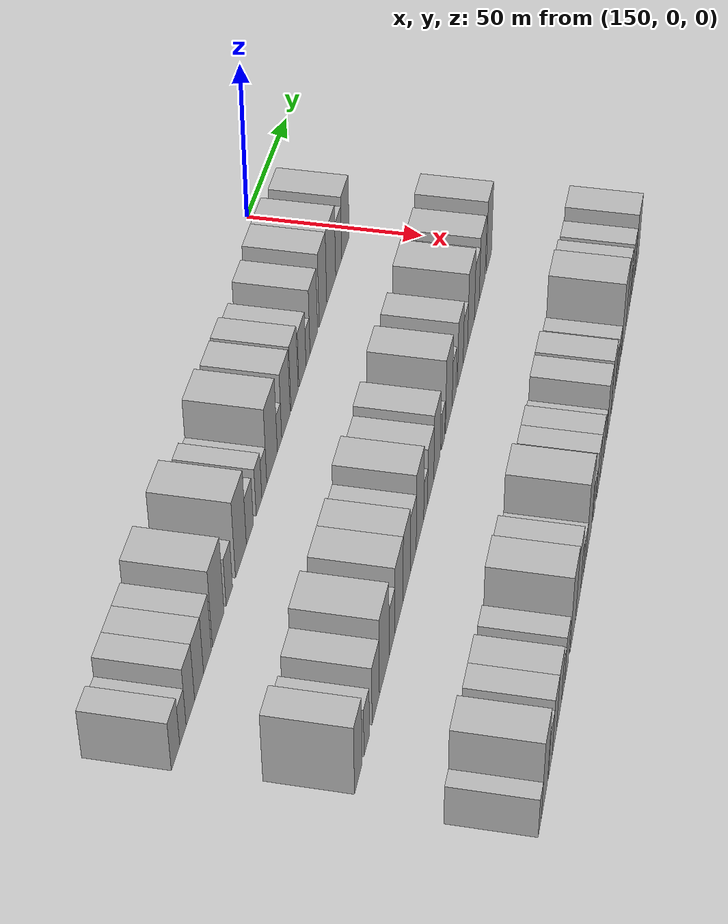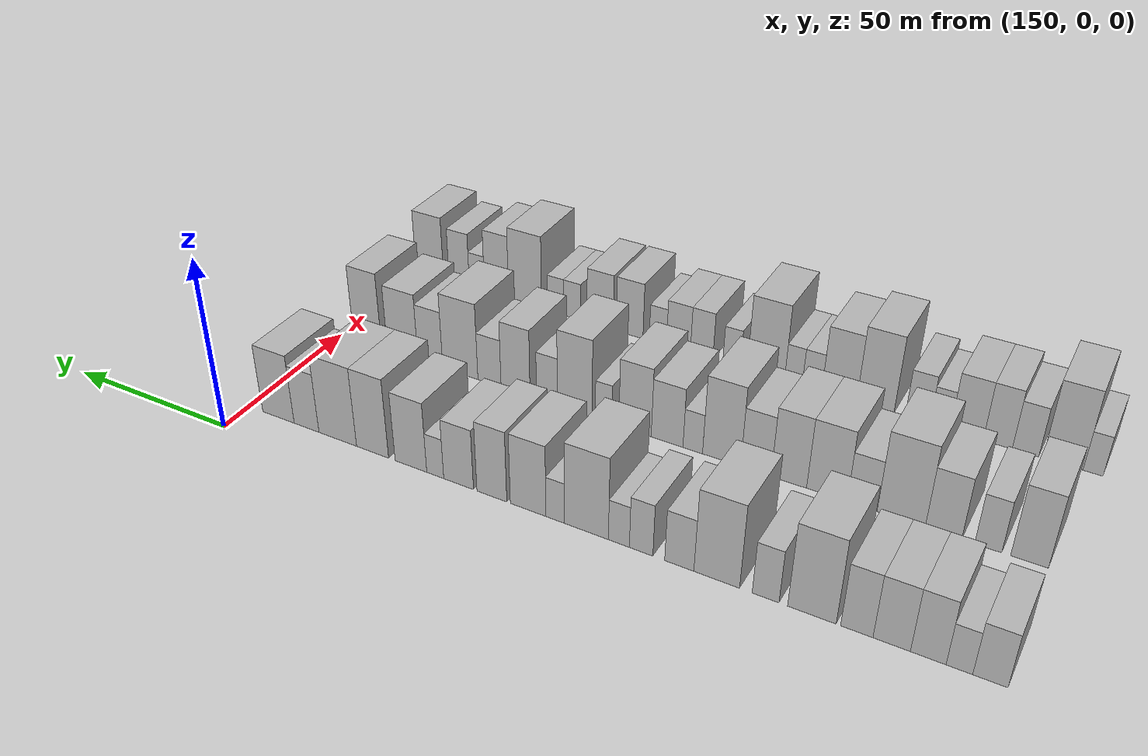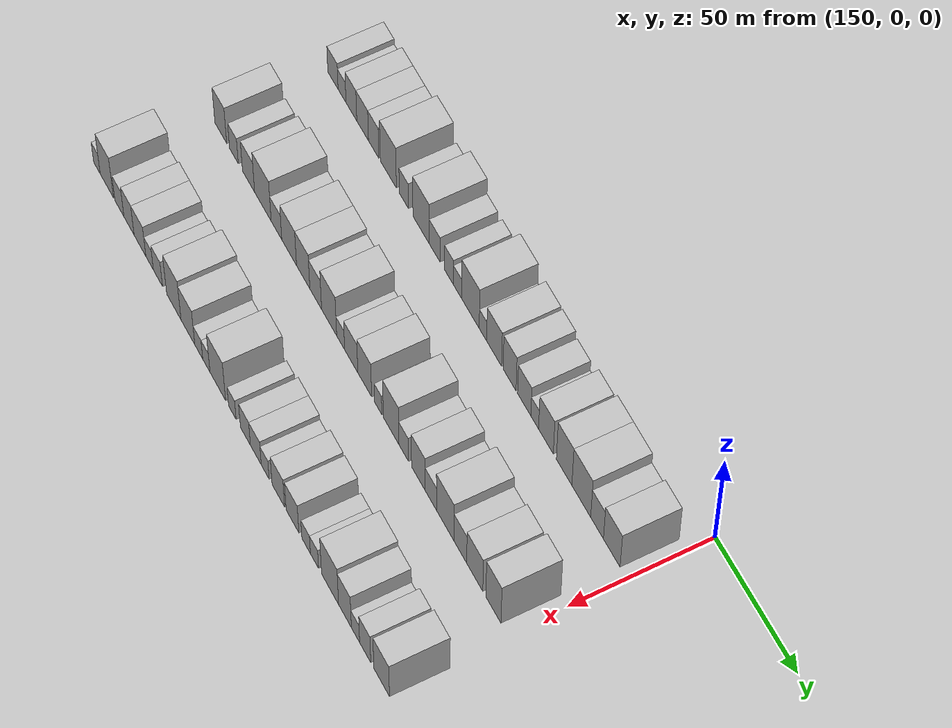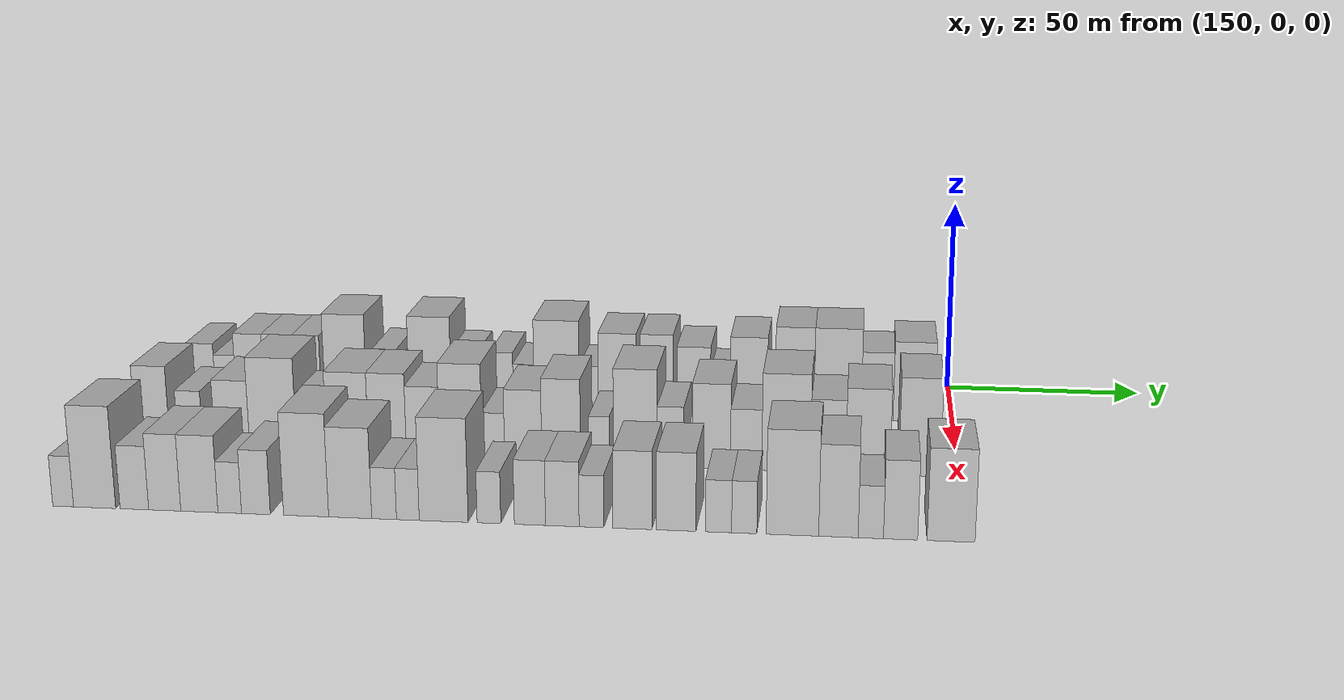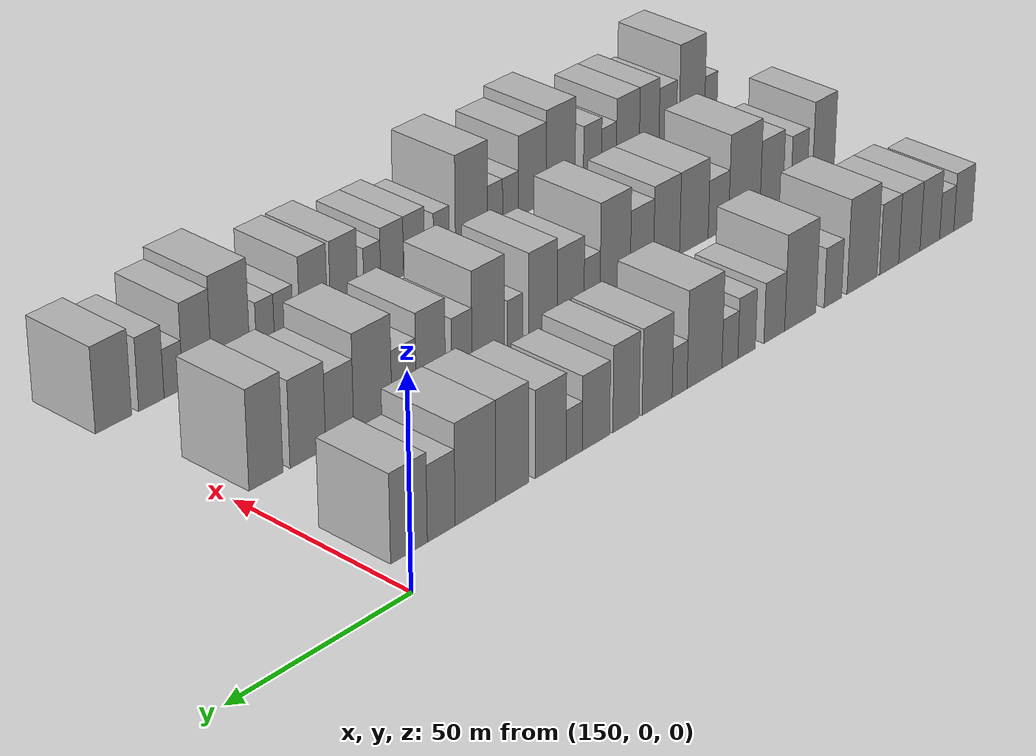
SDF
<sdf version="1.6">
 <world name="default">
  <model name="building_463">
   <static>1</static>
   <pose>170.0000 -195.9875 0 0.000000 0.000000 0.000000</pose>
   <link name="link">
    <pose>0 0 7.50 0 0 0</pose>
    <collision name="collision"><geometry><box><size>20.0000 7.2621 15.0000</size></box></geometry></collision>
    <visual name="visual">
     <cast_shadows>0</cast_shadows>
     <geometry><box><size>20.0000 7.2621 15.0000</size></box></geometry>
     <material>
      <script>
       <uri>model://HANNAS_wall/materials/scripts</uri>
       <uri>model://HANNAS_wall/materials/textures</uri>
       <name>vrc/HANNAS_wall</name>
      </script>
     </material>
    </visual>
   </link>
  </model>
  <model name="building_464">
   <static>1</static>
   <pose>170.0000 -189.5682 0 0.000000 0.000000 0.000000</pose>
   <link name="link">
    <pose>0 0 6.00 0 0 0</pose>
    <collision name="collision"><geometry><box><size>20.0000 5.5766 12.0000</size></box></geometry></collision>
    <visual name="visual">
     <cast_shadows>0</cast_shadows>
     <geometry><box><size>20.0000 5.5766 12.0000</size></box></geometry>
     <material>
      <script>
       <uri>model://HANNAS_wall/materials/scripts</uri>
       <uri>model://HANNAS_wall/materials/textures</uri>
       <name>vrc/HANNAS_wall</name>
      </script>
     </material>
    </visual>
   </link>
  </model>
  <model name="building_465">
   <static>1</static>
   <pose>170.0000 -182.9762 0 0.000000 0.000000 0.000000</pose>
   <link name="link">
    <pose>0 0 9.00 0 0 0</pose>
    <collision name="collision"><geometry><box><size>20.0000 7.6073 18.0000</size></box></geometry></collision>
    <visual name="visual">
     <cast_shadows>0</cast_shadows>
     <geometry><box><size>20.0000 7.6073 18.0000</size></box></geometry>
     <material>
      <script>
       <uri>model://HANNAS_wall/materials/scripts</uri>
       <uri>model://HANNAS_wall/materials/textures</uri>
       <name>vrc/HANNAS_wall</name>
      </script>
     </material>
    </visual>
   </link>
  </model>
  <model name="building_466">
   <static>1</static>
   <pose>170.0000 -175.0838 0 0.000000 0.000000 0.000000</pose>
   <link name="link">
    <pose>0 0 9.00 0 0 0</pose>
    <collision name="collision"><geometry><box><size>20.0000 8.1775 18.0000</size></box></geometry></collision>
    <visual name="visual">
     <cast_shadows>0</cast_shadows>
     <geometry><box><size>20.0000 8.1775 18.0000</size></box></geometry>
     <material>
      <script>
       <uri>model://HANNAS_wall/materials/scripts</uri>
       <uri>model://HANNAS_wall/materials/textures</uri>
       <name>vrc/HANNAS_wall</name>
      </script>
     </material>
    </visual>
   </link>
  </model>
  <model name="building_467">
   <static>1</static>
   <pose>170.0000 -167.3872 0 0.000000 0.000000 0.000000</pose>
   <link name="link">
    <pose>0 0 9.00 0 0 0</pose>
    <collision name="collision"><geometry><box><size>20.0000 7.2156 18.0000</size></box></geometry></collision>
    <visual name="visual">
     <cast_shadows>0</cast_shadows>
     <geometry><box><size>20.0000 7.2156 18.0000</size></box></geometry>
     <material>
      <script>
       <uri>model://HANNAS_wall/materials/scripts</uri>
       <uri>model://HANNAS_wall/materials/textures</uri>
       <name>vrc/HANNAS_wall</name>
      </script>
     </material>
    </visual>
   </link>
  </model>
  <model name="building_468">
   <static>1</static>
   <pose>170.0000 -157.2032 0 0.000000 0.000000 0.000000</pose>
   <link name="link">
    <pose>0 0 12.00 0 0 0</pose>
    <collision name="collision"><geometry><box><size>20.0000 11.1525 24.0000</size></box></geometry></collision>
    <visual name="visual">
     <cast_shadows>0</cast_shadows>
     <geometry><box><size>20.0000 11.1525 24.0000</size></box></geometry>
     <material>
      <script>
       <uri>model://HANNAS_wall/materials/scripts</uri>
       <uri>model://HANNAS_wall/materials/textures</uri>
       <name>vrc/HANNAS_wall</name>
      </script>
     </material>
    </visual>
   </link>
  </model>
  <model name="building_469">
   <static>1</static>
   <pose>170.0000 -146.4480 0 0.000000 0.000000 0.000000</pose>
   <link name="link">
    <pose>0 0 7.50 0 0 0</pose>
    <collision name="collision"><geometry><box><size>20.0000 6.3580 15.0000</size></box></geometry></collision>
    <visual name="visual">
     <cast_shadows>0</cast_shadows>
     <geometry><box><size>20.0000 6.3580 15.0000</size></box></geometry>
     <material>
      <script>
       <uri>model://HANNAS_wall/materials/scripts</uri>
       <uri>model://HANNAS_wall/materials/textures</uri>
       <name>vrc/HANNAS_wall</name>
      </script>
     </material>
    </visual>
   </link>
  </model>
  <model name="building_470">
   <static>1</static>
   <pose>170.0000 -134.6839 0 0.000000 0.000000 0.000000</pose>
   <link name="link">
    <pose>0 0 12.00 0 0 0</pose>
    <collision name="collision"><geometry><box><size>20.0000 11.1701 24.0000</size></box></geometry></collision>
    <visual name="visual">
     <cast_shadows>0</cast_shadows>
     <geometry><box><size>20.0000 11.1701 24.0000</size></box></geometry>
     <material>
      <script>
       <uri>model://HANNAS_wall/materials/scripts</uri>
       <uri>model://HANNAS_wall/materials/textures</uri>
       <name>vrc/HANNAS_wall</name>
      </script>
     </material>
    </visual>
   </link>
  </model>
  <model name="building_471">
   <static>1</static>
   <pose>170.0000 -125.4495 0 0.000000 0.000000 0.000000</pose>
   <link name="link">
    <pose>0 0 7.50 0 0 0</pose>
    <collision name="collision"><geometry><box><size>20.0000 7.2988 15.0000</size></box></geometry></collision>
    <visual name="visual">
     <cast_shadows>0</cast_shadows>
     <geometry><box><size>20.0000 7.2988 15.0000</size></box></geometry>
     <material>
      <script>
       <uri>model://HANNAS_wall/materials/scripts</uri>
       <uri>model://HANNAS_wall/materials/textures</uri>
       <name>vrc/HANNAS_wall</name>
      </script>
     </material>
    </visual>
   </link>
  </model>
  <model name="building_472">
   <static>1</static>
   <pose>170.0000 -115.7820 0 0.000000 0.000000 0.000000</pose>
   <link name="link">
    <pose>0 0 7.50 0 0 0</pose>
    <collision name="collision"><geometry><box><size>20.0000 6.0361 15.0000</size></box></geometry></collision>
    <visual name="visual">
     <cast_shadows>0</cast_shadows>
     <geometry><box><size>20.0000 6.0361 15.0000</size></box></geometry>
     <material>
      <script>
       <uri>model://HANNAS_wall/materials/scripts</uri>
       <uri>model://HANNAS_wall/materials/textures</uri>
       <name>vrc/HANNAS_wall</name>
      </script>
     </material>
    </visual>
   </link>
  </model>
  <model name="building_473">
   <static>1</static>
   <pose>170.0000 -110.0253 0 0.000000 0.000000 0.000000</pose>
   <link name="link">
    <pose>0 0 6.00 0 0 0</pose>
    <collision name="collision"><geometry><box><size>20.0000 5.4774 12.0000</size></box></geometry></collision>
    <visual name="visual">
     <cast_shadows>0</cast_shadows>
     <geometry><box><size>20.0000 5.4774 12.0000</size></box></geometry>
     <material>
      <script>
       <uri>model://HANNAS_wall/materials/scripts</uri>
       <uri>model://HANNAS_wall/materials/textures</uri>
       <name>vrc/HANNAS_wall</name>
      </script>
     </material>
    </visual>
   </link>
  </model>
  <model name="building_474">
   <static>1</static>
   <pose>170.0000 -101.3930 0 0.000000 0.000000 0.000000</pose>
   <link name="link">
    <pose>0 0 12.00 0 0 0</pose>
    <collision name="collision"><geometry><box><size>20.0000 11.7872 24.0000</size></box></geometry></collision>
    <visual name="visual">
     <cast_shadows>0</cast_shadows>
     <geometry><box><size>20.0000 11.7872 24.0000</size></box></geometry>
     <material>
      <script>
       <uri>model://HANNAS_wall/materials/scripts</uri>
       <uri>model://HANNAS_wall/materials/textures</uri>
       <name>vrc/HANNAS_wall</name>
      </script>
     </material>
    </visual>
   </link>
  </model>
  <model name="building_475">
   <static>1</static>
   <pose>170.0000 -93.0215 0 0.000000 0.000000 0.000000</pose>
   <link name="link">
    <pose>0 0 6.00 0 0 0</pose>
    <collision name="collision"><geometry><box><size>20.0000 4.9559 12.0000</size></box></geometry></collision>
    <visual name="visual">
     <cast_shadows>0</cast_shadows>
     <geometry><box><size>20.0000 4.9559 12.0000</size></box></geometry>
     <material>
      <script>
       <uri>model://HANNAS_wall/materials/scripts</uri>
       <uri>model://HANNAS_wall/materials/textures</uri>
       <name>vrc/HANNAS_wall</name>
      </script>
     </material>
    </visual>
   </link>
  </model>
  <model name="building_476">
   <static>1</static>
   <pose>170.0000 -85.6136 0 0.000000 0.000000 0.000000</pose>
   <link name="link">
    <pose>0 0 10.50 0 0 0</pose>
    <collision name="collision"><geometry><box><size>20.0000 9.8600 21.0000</size></box></geometry></collision>
    <visual name="visual">
     <cast_shadows>0</cast_shadows>
     <geometry><box><size>20.0000 9.8600 21.0000</size></box></geometry>
     <material>
      <script>
       <uri>model://HANNAS_wall/materials/scripts</uri>
       <uri>model://HANNAS_wall/materials/textures</uri>
       <name>vrc/HANNAS_wall</name>
      </script>
     </material>
    </visual>
   </link>
  </model>
  <model name="building_477">
   <static>1</static>
   <pose>170.0000 -75.4367 0 0.000000 0.000000 0.000000</pose>
   <link name="link">
    <pose>0 0 10.50 0 0 0</pose>
    <collision name="collision"><geometry><box><size>20.0000 8.4937 21.0000</size></box></geometry></collision>
    <visual name="visual">
     <cast_shadows>0</cast_shadows>
     <geometry><box><size>20.0000 8.4937 21.0000</size></box></geometry>
     <material>
      <script>
       <uri>model://HANNAS_wall/materials/scripts</uri>
       <uri>model://HANNAS_wall/materials/textures</uri>
       <name>vrc/HANNAS_wall</name>
      </script>
     </material>
    </visual>
   </link>
  </model>
  <model name="building_478">
   <static>1</static>
   <pose>170.0000 -65.8563 0 0.000000 0.000000 0.000000</pose>
   <link name="link">
    <pose>0 0 9.00 0 0 0</pose>
    <collision name="collision"><geometry><box><size>20.0000 8.6671 18.0000</size></box></geometry></collision>
    <visual name="visual">
     <cast_shadows>0</cast_shadows>
     <geometry><box><size>20.0000 8.6671 18.0000</size></box></geometry>
     <material>
      <script>
       <uri>model://HANNAS_wall/materials/scripts</uri>
       <uri>model://HANNAS_wall/materials/textures</uri>
       <name>vrc/HANNAS_wall</name>
      </script>
     </material>
    </visual>
   </link>
  </model>
  <model name="building_479">
   <static>1</static>
   <pose>170.0000 -59.0038 0 0.000000 0.000000 0.000000</pose>
   <link name="link">
    <pose>0 0 6.00 0 0 0</pose>
    <collision name="collision"><geometry><box><size>20.0000 5.0380 12.0000</size></box></geometry></collision>
    <visual name="visual">
     <cast_shadows>0</cast_shadows>
     <geometry><box><size>20.0000 5.0380 12.0000</size></box></geometry>
     <material>
      <script>
       <uri>model://HANNAS_wall/materials/scripts</uri>
       <uri>model://HANNAS_wall/materials/textures</uri>
       <name>vrc/HANNAS_wall</name>
      </script>
     </material>
    </visual>
   </link>
  </model>
  <model name="building_480">
   <static>1</static>
   <pose>170.0000 -51.7140 0 0.000000 0.000000 0.000000</pose>
   <link name="link">
    <pose>0 0 10.50 0 0 0</pose>
    <collision name="collision"><geometry><box><size>20.0000 9.5417 21.0000</size></box></geometry></collision>
    <visual name="visual">
     <cast_shadows>0</cast_shadows>
     <geometry><box><size>20.0000 9.5417 21.0000</size></box></geometry>
     <material>
      <script>
       <uri>model://HANNAS_wall/materials/scripts</uri>
       <uri>model://HANNAS_wall/materials/textures</uri>
       <name>vrc/HANNAS_wall</name>
      </script>
     </material>
    </visual>
   </link>
  </model>
  <model name="building_481">
   <static>1</static>
   <pose>170.0000 -39.9706 0 0.000000 0.000000 0.000000</pose>
   <link name="link">
    <pose>0 0 12.00 0 0 0</pose>
    <collision name="collision"><geometry><box><size>20.0000 9.9451 24.0000</size></box></geometry></collision>
    <visual name="visual">
     <cast_shadows>0</cast_shadows>
     <geometry><box><size>20.0000 9.9451 24.0000</size></box></geometry>
     <material>
      <script>
       <uri>model://HANNAS_wall/materials/scripts</uri>
       <uri>model://HANNAS_wall/materials/textures</uri>
       <name>vrc/HANNAS_wall</name>
      </script>
     </material>
    </visual>
   </link>
  </model>
  <model name="building_482">
   <static>1</static>
   <pose>170.0000 -29.0029 0 0.000000 0.000000 0.000000</pose>
   <link name="link">
    <pose>0 0 12.00 0 0 0</pose>
    <collision name="collision"><geometry><box><size>20.0000 11.9903 24.0000</size></box></geometry></collision>
    <visual name="visual">
     <cast_shadows>0</cast_shadows>
     <geometry><box><size>20.0000 11.9903 24.0000</size></box></geometry>
     <material>
      <script>
       <uri>model://HANNAS_wall/materials/scripts</uri>
       <uri>model://HANNAS_wall/materials/textures</uri>
       <name>vrc/HANNAS_wall</name>
      </script>
     </material>
    </visual>
   </link>
  </model>
  <model name="building_483">
   <static>1</static>
   <pose>170.0000 -18.9657 0 0.000000 0.000000 0.000000</pose>
   <link name="link">
    <pose>0 0 9.00 0 0 0</pose>
    <collision name="collision"><geometry><box><size>20.0000 8.0840 18.0000</size></box></geometry></collision>
    <visual name="visual">
     <cast_shadows>0</cast_shadows>
     <geometry><box><size>20.0000 8.0840 18.0000</size></box></geometry>
     <material>
      <script>
       <uri>model://HANNAS_wall/materials/scripts</uri>
       <uri>model://HANNAS_wall/materials/textures</uri>
       <name>vrc/HANNAS_wall</name>
      </script>
     </material>
    </visual>
   </link>
  </model>
  <model name="building_484">
   <static>1</static>
   <pose>170.0000 -9.6862 0 0.000000 0.000000 0.000000</pose>
   <link name="link">
    <pose>0 0 10.50 0 0 0</pose>
    <collision name="collision"><geometry><box><size>20.0000 10.4750 21.0000</size></box></geometry></collision>
    <visual name="visual">
     <cast_shadows>0</cast_shadows>
     <geometry><box><size>20.0000 10.4750 21.0000</size></box></geometry>
     <material>
      <script>
       <uri>model://HANNAS_wall/materials/scripts</uri>
       <uri>model://HANNAS_wall/materials/textures</uri>
       <name>vrc/HANNAS_wall</name>
      </script>
     </material>
    </visual>
   </link>
  </model>
  <model name="building_591">
   <static>1</static>
   <pose>210.0000 -194.6105 0 0.000000 0.000000 0.000000</pose>
   <link name="link">
    <pose>0 0 10.50 0 0 0</pose>
    <collision name="collision"><geometry><box><size>20.0000 8.5243 21.0000</size></box></geometry></collision>
    <visual name="visual">
     <cast_shadows>0</cast_shadows>
     <geometry><box><size>20.0000 8.5243 21.0000</size></box></geometry>
     <material>
      <script>
       <uri>model://HANNAS_wall/materials/scripts</uri>
       <uri>model://HANNAS_wall/materials/textures</uri>
       <name>vrc/HANNAS_wall</name>
      </script>
     </material>
    </visual>
   </link>
  </model>
  <model name="building_592">
   <static>1</static>
   <pose>210.0000 -185.2105 0 0.000000 0.000000 0.000000</pose>
   <link name="link">
    <pose>0 0 7.50 0 0 0</pose>
    <collision name="collision"><geometry><box><size>20.0000 6.2756 15.0000</size></box></geometry></collision>
    <visual name="visual">
     <cast_shadows>0</cast_shadows>
     <geometry><box><size>20.0000 6.2756 15.0000</size></box></geometry>
     <material>
      <script>
       <uri>model://HANNAS_wall/materials/scripts</uri>
       <uri>model://HANNAS_wall/materials/textures</uri>
       <name>vrc/HANNAS_wall</name>
      </script>
     </material>
    </visual>
   </link>
  </model>
  <model name="building_593">
   <static>1</static>
   <pose>210.0000 -174.7388 0 0.000000 0.000000 0.000000</pose>
   <link name="link">
    <pose>0 0 9.00 0 0 0</pose>
    <collision name="collision"><geometry><box><size>20.0000 8.6678 18.0000</size></box></geometry></collision>
    <visual name="visual">
     <cast_shadows>0</cast_shadows>
     <geometry><box><size>20.0000 8.6678 18.0000</size></box></geometry>
     <material>
      <script>
       <uri>model://HANNAS_wall/materials/scripts</uri>
       <uri>model://HANNAS_wall/materials/textures</uri>
       <name>vrc/HANNAS_wall</name>
      </script>
     </material>
    </visual>
   </link>
  </model>
  <model name="building_594">
   <static>1</static>
   <pose>210.0000 -164.5522 0 0.000000 0.000000 0.000000</pose>
   <link name="link">
    <pose>0 0 12.00 0 0 0</pose>
    <collision name="collision"><geometry><box><size>20.0000 11.7054 24.0000</size></box></geometry></collision>
    <visual name="visual">
     <cast_shadows>0</cast_shadows>
     <geometry><box><size>20.0000 11.7054 24.0000</size></box></geometry>
     <material>
      <script>
       <uri>model://HANNAS_wall/materials/scripts</uri>
       <uri>model://HANNAS_wall/materials/textures</uri>
       <name>vrc/HANNAS_wall</name>
      </script>
     </material>
    </visual>
   </link>
  </model>
  <model name="building_595">
   <static>1</static>
   <pose>210.0000 -154.9670 0 0.000000 0.000000 0.000000</pose>
   <link name="link">
    <pose>0 0 7.50 0 0 0</pose>
    <collision name="collision"><geometry><box><size>20.0000 7.4651 15.0000</size></box></geometry></collision>
    <visual name="visual">
     <cast_shadows>0</cast_shadows>
     <geometry><box><size>20.0000 7.4651 15.0000</size></box></geometry>
     <material>
      <script>
       <uri>model://HANNAS_wall/materials/scripts</uri>
       <uri>model://HANNAS_wall/materials/textures</uri>
       <name>vrc/HANNAS_wall</name>
      </script>
     </material>
    </visual>
   </link>
  </model>
  <model name="building_596">
   <static>1</static>
   <pose>210.0000 -146.0755 0 0.000000 0.000000 0.000000</pose>
   <link name="link">
    <pose>0 0 10.50 0 0 0</pose>
    <collision name="collision"><geometry><box><size>20.0000 10.3178 21.0000</size></box></geometry></collision>
    <visual name="visual">
     <cast_shadows>0</cast_shadows>
     <geometry><box><size>20.0000 10.3178 21.0000</size></box></geometry>
     <material>
      <script>
       <uri>model://HANNAS_wall/materials/scripts</uri>
       <uri>model://HANNAS_wall/materials/textures</uri>
       <name>vrc/HANNAS_wall</name>
      </script>
     </material>
    </visual>
   </link>
  </model>
  <model name="building_597">
   <static>1</static>
   <pose>210.0000 -136.2790 0 0.000000 0.000000 0.000000</pose>
   <link name="link">
    <pose>0 0 10.50 0 0 0</pose>
    <collision name="collision"><geometry><box><size>20.0000 9.2751 21.0000</size></box></geometry></collision>
    <visual name="visual">
     <cast_shadows>0</cast_shadows>
     <geometry><box><size>20.0000 9.2751 21.0000</size></box></geometry>
     <material>
      <script>
       <uri>model://HANNAS_wall/materials/scripts</uri>
       <uri>model://HANNAS_wall/materials/textures</uri>
       <name>vrc/HANNAS_wall</name>
      </script>
     </material>
    </visual>
   </link>
  </model>
  <model name="building_598">
   <static>1</static>
   <pose>210.0000 -127.5745 0 0.000000 0.000000 0.000000</pose>
   <link name="link">
    <pose>0 0 9.00 0 0 0</pose>
    <collision name="collision"><geometry><box><size>20.0000 8.1339 18.0000</size></box></geometry></collision>
    <visual name="visual">
     <cast_shadows>0</cast_shadows>
     <geometry><box><size>20.0000 8.1339 18.0000</size></box></geometry>
     <material>
      <script>
       <uri>model://HANNAS_wall/materials/scripts</uri>
       <uri>model://HANNAS_wall/materials/textures</uri>
       <name>vrc/HANNAS_wall</name>
      </script>
     </material>
    </visual>
   </link>
  </model>
  <model name="building_599">
   <static>1</static>
   <pose>210.0000 -118.3195 0 0.000000 0.000000 0.000000</pose>
   <link name="link">
    <pose>0 0 12.00 0 0 0</pose>
    <collision name="collision"><geometry><box><size>20.0000 10.3760 24.0000</size></box></geometry></collision>
    <visual name="visual">
     <cast_shadows>0</cast_shadows>
     <geometry><box><size>20.0000 10.3760 24.0000</size></box></geometry>
     <material>
      <script>
       <uri>model://HANNAS_wall/materials/scripts</uri>
       <uri>model://HANNAS_wall/materials/textures</uri>
       <name>vrc/HANNAS_wall</name>
      </script>
     </material>
    </visual>
   </link>
  </model>
  <model name="building_600">
   <static>1</static>
   <pose>210.0000 -110.4123 0 0.000000 0.000000 0.000000</pose>
   <link name="link">
    <pose>0 0 6.00 0 0 0</pose>
    <collision name="collision"><geometry><box><size>20.0000 5.4385 12.0000</size></box></geometry></collision>
    <visual name="visual">
     <cast_shadows>0</cast_shadows>
     <geometry><box><size>20.0000 5.4385 12.0000</size></box></geometry>
     <material>
      <script>
       <uri>model://HANNAS_wall/materials/scripts</uri>
       <uri>model://HANNAS_wall/materials/textures</uri>
       <name>vrc/HANNAS_wall</name>
      </script>
     </material>
    </visual>
   </link>
  </model>
  <model name="building_601">
   <static>1</static>
   <pose>210.0000 -103.1990 0 0.000000 0.000000 0.000000</pose>
   <link name="link">
    <pose>0 0 9.00 0 0 0</pose>
    <collision name="collision"><geometry><box><size>20.0000 8.9881 18.0000</size></box></geometry></collision>
    <visual name="visual">
     <cast_shadows>0</cast_shadows>
     <geometry><box><size>20.0000 8.9881 18.0000</size></box></geometry>
     <material>
      <script>
       <uri>model://HANNAS_wall/materials/scripts</uri>
       <uri>model://HANNAS_wall/materials/textures</uri>
       <name>vrc/HANNAS_wall</name>
      </script>
     </material>
    </visual>
   </link>
  </model>
  <model name="building_602">
   <static>1</static>
   <pose>210.0000 -94.0237 0 0.000000 0.000000 0.000000</pose>
   <link name="link">
    <pose>0 0 10.50 0 0 0</pose>
    <collision name="collision"><geometry><box><size>20.0000 9.3627 21.0000</size></box></geometry></collision>
    <visual name="visual">
     <cast_shadows>0</cast_shadows>
     <geometry><box><size>20.0000 9.3627 21.0000</size></box></geometry>
     <material>
      <script>
       <uri>model://HANNAS_wall/materials/scripts</uri>
       <uri>model://HANNAS_wall/materials/textures</uri>
       <name>vrc/HANNAS_wall</name>
      </script>
     </material>
    </visual>
   </link>
  </model>
  <model name="building_603">
   <static>1</static>
   <pose>210.0000 -84.8822 0 0.000000 0.000000 0.000000</pose>
   <link name="link">
    <pose>0 0 6.00 0 0 0</pose>
    <collision name="collision"><geometry><box><size>20.0000 4.9202 12.0000</size></box></geometry></collision>
    <visual name="visual">
     <cast_shadows>0</cast_shadows>
     <geometry><box><size>20.0000 4.9202 12.0000</size></box></geometry>
     <material>
      <script>
       <uri>model://HANNAS_wall/materials/scripts</uri>
       <uri>model://HANNAS_wall/materials/textures</uri>
       <name>vrc/HANNAS_wall</name>
      </script>
     </material>
    </visual>
   </link>
  </model>
  <model name="building_604">
   <static>1</static>
   <pose>210.0000 -76.2095 0 0.000000 0.000000 0.000000</pose>
   <link name="link">
    <pose>0 0 12.00 0 0 0</pose>
    <collision name="collision"><geometry><box><size>20.0000 10.4253 24.0000</size></box></geometry></collision>
    <visual name="visual">
     <cast_shadows>0</cast_shadows>
     <geometry><box><size>20.0000 10.4253 24.0000</size></box></geometry>
     <material>
      <script>
       <uri>model://HANNAS_wall/materials/scripts</uri>
       <uri>model://HANNAS_wall/materials/textures</uri>
       <name>vrc/HANNAS_wall</name>
      </script>
     </material>
    </visual>
   </link>
  </model>
  <model name="building_605">
   <static>1</static>
   <pose>210.0000 -67.8188 0 0.000000 0.000000 0.000000</pose>
   <link name="link">
    <pose>0 0 7.50 0 0 0</pose>
    <collision name="collision"><geometry><box><size>20.0000 6.3562 15.0000</size></box></geometry></collision>
    <visual name="visual">
     <cast_shadows>0</cast_shadows>
     <geometry><box><size>20.0000 6.3562 15.0000</size></box></geometry>
     <material>
      <script>
       <uri>model://HANNAS_wall/materials/scripts</uri>
       <uri>model://HANNAS_wall/materials/textures</uri>
       <name>vrc/HANNAS_wall</name>
      </script>
     </material>
    </visual>
   </link>
  </model>
  <model name="building_606">
   <static>1</static>
   <pose>210.0000 -58.0944 0 0.000000 0.000000 0.000000</pose>
   <link name="link">
    <pose>0 0 10.50 0 0 0</pose>
    <collision name="collision"><geometry><box><size>20.0000 9.0926 21.0000</size></box></geometry></collision>
    <visual name="visual">
     <cast_shadows>0</cast_shadows>
     <geometry><box><size>20.0000 9.0926 21.0000</size></box></geometry>
     <material>
      <script>
       <uri>model://HANNAS_wall/materials/scripts</uri>
       <uri>model://HANNAS_wall/materials/textures</uri>
       <name>vrc/HANNAS_wall</name>
      </script>
     </material>
    </visual>
   </link>
  </model>
  <model name="building_607">
   <static>1</static>
   <pose>210.0000 -49.8450 0 0.000000 0.000000 0.000000</pose>
   <link name="link">
    <pose>0 0 7.50 0 0 0</pose>
    <collision name="collision"><geometry><box><size>20.0000 7.4062 15.0000</size></box></geometry></collision>
    <visual name="visual">
     <cast_shadows>0</cast_shadows>
     <geometry><box><size>20.0000 7.4062 15.0000</size></box></geometry>
     <material>
      <script>
       <uri>model://HANNAS_wall/materials/scripts</uri>
       <uri>model://HANNAS_wall/materials/textures</uri>
       <name>vrc/HANNAS_wall</name>
      </script>
     </material>
    </visual>
   </link>
  </model>
  <model name="building_608">
   <static>1</static>
   <pose>210.0000 -40.4196 0 0.000000 0.000000 0.000000</pose>
   <link name="link">
    <pose>0 0 12.00 0 0 0</pose>
    <collision name="collision"><geometry><box><size>20.0000 11.4447 24.0000</size></box></geometry></collision>
    <visual name="visual">
     <cast_shadows>0</cast_shadows>
     <geometry><box><size>20.0000 11.4447 24.0000</size></box></geometry>
     <material>
      <script>
       <uri>model://HANNAS_wall/materials/scripts</uri>
       <uri>model://HANNAS_wall/materials/textures</uri>
       <name>vrc/HANNAS_wall</name>
      </script>
     </material>
    </visual>
   </link>
  </model>
  <model name="building_609">
   <static>1</static>
   <pose>210.0000 -30.5512 0 0.000000 0.000000 0.000000</pose>
   <link name="link">
    <pose>0 0 9.00 0 0 0</pose>
    <collision name="collision"><geometry><box><size>20.0000 8.2920 18.0000</size></box></geometry></collision>
    <visual name="visual">
     <cast_shadows>0</cast_shadows>
     <geometry><box><size>20.0000 8.2920 18.0000</size></box></geometry>
     <material>
      <script>
       <uri>model://HANNAS_wall/materials/scripts</uri>
       <uri>model://HANNAS_wall/materials/textures</uri>
       <name>vrc/HANNAS_wall</name>
      </script>
     </material>
    </visual>
   </link>
  </model>
  <model name="building_610">
   <static>1</static>
   <pose>210.0000 -21.2179 0 0.000000 0.000000 0.000000</pose>
   <link name="link">
    <pose>0 0 10.50 0 0 0</pose>
    <collision name="collision"><geometry><box><size>20.0000 10.3747 21.0000</size></box></geometry></collision>
    <visual name="visual">
     <cast_shadows>0</cast_shadows>
     <geometry><box><size>20.0000 10.3747 21.0000</size></box></geometry>
     <material>
      <script>
       <uri>model://HANNAS_wall/materials/scripts</uri>
       <uri>model://HANNAS_wall/materials/textures</uri>
       <name>vrc/HANNAS_wall</name>
      </script>
     </material>
    </visual>
   </link>
  </model>
  <model name="building_611">
   <static>1</static>
   <pose>210.0000 -9.1842 0 0.000000 0.000000 0.000000</pose>
   <link name="link">
    <pose>0 0 12.00 0 0 0</pose>
    <collision name="collision"><geometry><box><size>20.0000 9.6926 24.0000</size></box></geometry></collision>
    <visual name="visual">
     <cast_shadows>0</cast_shadows>
     <geometry><box><size>20.0000 9.6926 24.0000</size></box></geometry>
     <material>
      <script>
       <uri>model://HANNAS_wall/materials/scripts</uri>
       <uri>model://HANNAS_wall/materials/textures</uri>
       <name>vrc/HANNAS_wall</name>
      </script>
     </material>
    </visual>
   </link>
  </model>
  <model name="building_728">
   <static>1</static>
   <pose>250.0000 -200.8313 0 0.000000 0.000000 0.000000</pose>
   <link name="link">
    <pose>0 0 6.00 0 0 0</pose>
    <collision name="collision"><geometry><box><size>20.0000 4.8316 12.0000</size></box></geometry></collision>
    <visual name="visual">
     <cast_shadows>0</cast_shadows>
     <geometry><box><size>20.0000 4.8316 12.0000</size></box></geometry>
     <material>
      <script>
       <uri>model://HANNAS_wall/materials/scripts</uri>
       <uri>model://HANNAS_wall/materials/textures</uri>
       <name>vrc/HANNAS_wall</name>
      </script>
     </material>
    </visual>
   </link>
  </model>
  <model name="building_729">
   <static>1</static>
   <pose>250.0000 -193.5125 0 0.000000 0.000000 0.000000</pose>
   <link name="link">
    <pose>0 0 12.00 0 0 0</pose>
    <collision name="collision"><geometry><box><size>20.0000 9.8061 24.0000</size></box></geometry></collision>
    <visual name="visual">
     <cast_shadows>0</cast_shadows>
     <geometry><box><size>20.0000 9.8061 24.0000</size></box></geometry>
     <material>
      <script>
       <uri>model://HANNAS_wall/materials/scripts</uri>
       <uri>model://HANNAS_wall/materials/textures</uri>
       <name>vrc/HANNAS_wall</name>
      </script>
     </material>
    </visual>
   </link>
  </model>
  <model name="building_730">
   <static>1</static>
   <pose>250.0000 -184.2977 0 0.000000 0.000000 0.000000</pose>
   <link name="link">
    <pose>0 0 7.50 0 0 0</pose>
    <collision name="collision"><geometry><box><size>20.0000 6.6236 15.0000</size></box></geometry></collision>
    <visual name="visual">
     <cast_shadows>0</cast_shadows>
     <geometry><box><size>20.0000 6.6236 15.0000</size></box></geometry>
     <material>
      <script>
       <uri>model://HANNAS_wall/materials/scripts</uri>
       <uri>model://HANNAS_wall/materials/textures</uri>
       <name>vrc/HANNAS_wall</name>
      </script>
     </material>
    </visual>
   </link>
  </model>
  <model name="building_731">
   <static>1</static>
   <pose>250.0000 -177.2860 0 0.000000 0.000000 0.000000</pose>
   <link name="link">
    <pose>0 0 9.00 0 0 0</pose>
    <collision name="collision"><geometry><box><size>20.0000 7.3997 18.0000</size></box></geometry></collision>
    <visual name="visual">
     <cast_shadows>0</cast_shadows>
     <geometry><box><size>20.0000 7.3997 18.0000</size></box></geometry>
     <material>
      <script>
       <uri>model://HANNAS_wall/materials/scripts</uri>
       <uri>model://HANNAS_wall/materials/textures</uri>
       <name>vrc/HANNAS_wall</name>
      </script>
     </material>
    </visual>
   </link>
  </model>
  <model name="building_732">
   <static>1</static>
   <pose>250.0000 -169.3216 0 0.000000 0.000000 0.000000</pose>
   <link name="link">
    <pose>0 0 9.00 0 0 0</pose>
    <collision name="collision"><geometry><box><size>20.0000 8.5292 18.0000</size></box></geometry></collision>
    <visual name="visual">
     <cast_shadows>0</cast_shadows>
     <geometry><box><size>20.0000 8.5292 18.0000</size></box></geometry>
     <material>
      <script>
       <uri>model://HANNAS_wall/materials/scripts</uri>
       <uri>model://HANNAS_wall/materials/textures</uri>
       <name>vrc/HANNAS_wall</name>
      </script>
     </material>
    </visual>
   </link>
  </model>
  <model name="building_733">
   <static>1</static>
   <pose>250.0000 -162.3599 0 0.000000 0.000000 0.000000</pose>
   <link name="link">
    <pose>0 0 6.00 0 0 0</pose>
    <collision name="collision"><geometry><box><size>20.0000 5.3943 12.0000</size></box></geometry></collision>
    <visual name="visual">
     <cast_shadows>0</cast_shadows>
     <geometry><box><size>20.0000 5.3943 12.0000</size></box></geometry>
     <material>
      <script>
       <uri>model://HANNAS_wall/materials/scripts</uri>
       <uri>model://HANNAS_wall/materials/textures</uri>
       <name>vrc/HANNAS_wall</name>
      </script>
     </material>
    </visual>
   </link>
  </model>
  <model name="building_734">
   <static>1</static>
   <pose>250.0000 -156.3688 0 0.000000 0.000000 0.000000</pose>
   <link name="link">
    <pose>0 0 7.50 0 0 0</pose>
    <collision name="collision"><geometry><box><size>20.0000 6.5880 15.0000</size></box></geometry></collision>
    <visual name="visual">
     <cast_shadows>0</cast_shadows>
     <geometry><box><size>20.0000 6.5880 15.0000</size></box></geometry>
     <material>
      <script>
       <uri>model://HANNAS_wall/materials/scripts</uri>
       <uri>model://HANNAS_wall/materials/textures</uri>
       <name>vrc/HANNAS_wall</name>
      </script>
     </material>
    </visual>
   </link>
  </model>
  <model name="building_735">
   <static>1</static>
   <pose>250.0000 -144.9502 0 0.000000 0.000000 0.000000</pose>
   <link name="link">
    <pose>0 0 12.00 0 0 0</pose>
    <collision name="collision"><geometry><box><size>20.0000 10.2491 24.0000</size></box></geometry></collision>
    <visual name="visual">
     <cast_shadows>0</cast_shadows>
     <geometry><box><size>20.0000 10.2491 24.0000</size></box></geometry>
     <material>
      <script>
       <uri>model://HANNAS_wall/materials/scripts</uri>
       <uri>model://HANNAS_wall/materials/textures</uri>
       <name>vrc/HANNAS_wall</name>
      </script>
     </material>
    </visual>
   </link>
  </model>
  <model name="building_736">
   <static>1</static>
   <pose>250.0000 -134.9569 0 0.000000 0.000000 0.000000</pose>
   <link name="link">
    <pose>0 0 10.50 0 0 0</pose>
    <collision name="collision"><geometry><box><size>20.0000 9.7377 21.0000</size></box></geometry></collision>
    <visual name="visual">
     <cast_shadows>0</cast_shadows>
     <geometry><box><size>20.0000 9.7377 21.0000</size></box></geometry>
     <material>
      <script>
       <uri>model://HANNAS_wall/materials/scripts</uri>
       <uri>model://HANNAS_wall/materials/textures</uri>
       <name>vrc/HANNAS_wall</name>
      </script>
     </material>
    </visual>
   </link>
  </model>
  <model name="building_737">
   <static>1</static>
   <pose>250.0000 -127.3002 0 0.000000 0.000000 0.000000</pose>
   <link name="link">
    <pose>0 0 6.00 0 0 0</pose>
    <collision name="collision"><geometry><box><size>20.0000 5.5757 12.0000</size></box></geometry></collision>
    <visual name="visual">
     <cast_shadows>0</cast_shadows>
     <geometry><box><size>20.0000 5.5757 12.0000</size></box></geometry>
     <material>
      <script>
       <uri>model://HANNAS_wall/materials/scripts</uri>
       <uri>model://HANNAS_wall/materials/textures</uri>
       <name>vrc/HANNAS_wall</name>
      </script>
     </material>
    </visual>
   </link>
  </model>
  <model name="building_738">
   <static>1</static>
   <pose>250.0000 -121.9573 0 0.000000 0.000000 0.000000</pose>
   <link name="link">
    <pose>0 0 6.00 0 0 0</pose>
    <collision name="collision"><geometry><box><size>20.0000 5.1099 12.0000</size></box></geometry></collision>
    <visual name="visual">
     <cast_shadows>0</cast_shadows>
     <geometry><box><size>20.0000 5.1099 12.0000</size></box></geometry>
     <material>
      <script>
       <uri>model://HANNAS_wall/materials/scripts</uri>
       <uri>model://HANNAS_wall/materials/textures</uri>
       <name>vrc/HANNAS_wall</name>
      </script>
     </material>
    </visual>
   </link>
  </model>
  <model name="building_739">
   <static>1</static>
   <pose>250.0000 -113.9243 0 0.000000 0.000000 0.000000</pose>
   <link name="link">
    <pose>0 0 12.00 0 0 0</pose>
    <collision name="collision"><geometry><box><size>20.0000 10.9561 24.0000</size></box></geometry></collision>
    <visual name="visual">
     <cast_shadows>0</cast_shadows>
     <geometry><box><size>20.0000 10.9561 24.0000</size></box></geometry>
     <material>
      <script>
       <uri>model://HANNAS_wall/materials/scripts</uri>
       <uri>model://HANNAS_wall/materials/textures</uri>
       <name>vrc/HANNAS_wall</name>
      </script>
     </material>
    </visual>
   </link>
  </model>
  <model name="building_740">
   <static>1</static>
   <pose>250.0000 -103.8086 0 0.000000 0.000000 0.000000</pose>
   <link name="link">
    <pose>0 0 6.00 0 0 0</pose>
    <collision name="collision"><geometry><box><size>20.0000 5.2754 12.0000</size></box></geometry></collision>
    <visual name="visual">
     <cast_shadows>0</cast_shadows>
     <geometry><box><size>20.0000 5.2754 12.0000</size></box></geometry>
     <material>
      <script>
       <uri>model://HANNAS_wall/materials/scripts</uri>
       <uri>model://HANNAS_wall/materials/textures</uri>
       <name>vrc/HANNAS_wall</name>
      </script>
     </material>
    </visual>
   </link>
  </model>
  <model name="building_741">
   <static>1</static>
   <pose>250.0000 -94.7189 0 0.000000 0.000000 0.000000</pose>
   <link name="link">
    <pose>0 0 7.50 0 0 0</pose>
    <collision name="collision"><geometry><box><size>20.0000 6.9039 15.0000</size></box></geometry></collision>
    <visual name="visual">
     <cast_shadows>0</cast_shadows>
     <geometry><box><size>20.0000 6.9039 15.0000</size></box></geometry>
     <material>
      <script>
       <uri>model://HANNAS_wall/materials/scripts</uri>
       <uri>model://HANNAS_wall/materials/textures</uri>
       <name>vrc/HANNAS_wall</name>
      </script>
     </material>
    </visual>
   </link>
  </model>
  <model name="building_742">
   <static>1</static>
   <pose>250.0000 -87.5531 0 0.000000 0.000000 0.000000</pose>
   <link name="link">
    <pose>0 0 7.50 0 0 0</pose>
    <collision name="collision"><geometry><box><size>20.0000 7.4277 15.0000</size></box></geometry></collision>
    <visual name="visual">
     <cast_shadows>0</cast_shadows>
     <geometry><box><size>20.0000 7.4277 15.0000</size></box></geometry>
     <material>
      <script>
       <uri>model://HANNAS_wall/materials/scripts</uri>
       <uri>model://HANNAS_wall/materials/textures</uri>
       <name>vrc/HANNAS_wall</name>
      </script>
     </material>
    </visual>
   </link>
  </model>
  <model name="building_743">
   <static>1</static>
   <pose>250.0000 -81.1279 0 0.000000 0.000000 0.000000</pose>
   <link name="link">
    <pose>0 0 6.00 0 0 0</pose>
    <collision name="collision"><geometry><box><size>20.0000 5.4227 12.0000</size></box></geometry></collision>
    <visual name="visual">
     <cast_shadows>0</cast_shadows>
     <geometry><box><size>20.0000 5.4227 12.0000</size></box></geometry>
     <material>
      <script>
       <uri>model://HANNAS_wall/materials/scripts</uri>
       <uri>model://HANNAS_wall/materials/textures</uri>
       <name>vrc/HANNAS_wall</name>
      </script>
     </material>
    </visual>
   </link>
  </model>
  <model name="building_744">
   <static>1</static>
   <pose>250.0000 -72.1257 0 0.000000 0.000000 0.000000</pose>
   <link name="link">
    <pose>0 0 9.00 0 0 0</pose>
    <collision name="collision"><geometry><box><size>20.0000 8.5818 18.0000</size></box></geometry></collision>
    <visual name="visual">
     <cast_shadows>0</cast_shadows>
     <geometry><box><size>20.0000 8.5818 18.0000</size></box></geometry>
     <material>
      <script>
       <uri>model://HANNAS_wall/materials/scripts</uri>
       <uri>model://HANNAS_wall/materials/textures</uri>
       <name>vrc/HANNAS_wall</name>
      </script>
     </material>
    </visual>
   </link>
  </model>
  <model name="building_745">
   <static>1</static>
   <pose>250.0000 -62.5275 0 0.000000 0.000000 0.000000</pose>
   <link name="link">
    <pose>0 0 9.00 0 0 0</pose>
    <collision name="collision"><geometry><box><size>20.0000 8.6145 18.0000</size></box></geometry></collision>
    <visual name="visual">
     <cast_shadows>0</cast_shadows>
     <geometry><box><size>20.0000 8.6145 18.0000</size></box></geometry>
     <material>
      <script>
       <uri>model://HANNAS_wall/materials/scripts</uri>
       <uri>model://HANNAS_wall/materials/textures</uri>
       <name>vrc/HANNAS_wall</name>
      </script>
     </material>
    </visual>
   </link>
  </model>
  <model name="building_746">
   <static>1</static>
   <pose>250.0000 -53.3495 0 0.000000 0.000000 0.000000</pose>
   <link name="link">
    <pose>0 0 6.00 0 0 0</pose>
    <collision name="collision"><geometry><box><size>20.0000 5.7416 12.0000</size></box></geometry></collision>
    <visual name="visual">
     <cast_shadows>0</cast_shadows>
     <geometry><box><size>20.0000 5.7416 12.0000</size></box></geometry>
     <material>
      <script>
       <uri>model://HANNAS_wall/materials/scripts</uri>
       <uri>model://HANNAS_wall/materials/textures</uri>
       <name>vrc/HANNAS_wall</name>
      </script>
     </material>
    </visual>
   </link>
  </model>
  <model name="building_747">
   <static>1</static>
   <pose>250.0000 -47.7426 0 0.000000 0.000000 0.000000</pose>
   <link name="link">
    <pose>0 0 6.00 0 0 0</pose>
    <collision name="collision"><geometry><box><size>20.0000 5.4721 12.0000</size></box></geometry></collision>
    <visual name="visual">
     <cast_shadows>0</cast_shadows>
     <geometry><box><size>20.0000 5.4721 12.0000</size></box></geometry>
     <material>
      <script>
       <uri>model://HANNAS_wall/materials/scripts</uri>
       <uri>model://HANNAS_wall/materials/textures</uri>
       <name>vrc/HANNAS_wall</name>
      </script>
     </material>
    </visual>
   </link>
  </model>
  <model name="building_748">
   <static>1</static>
   <pose>250.0000 -37.3333 0 0.000000 0.000000 0.000000</pose>
   <link name="link">
    <pose>0 0 12.00 0 0 0</pose>
    <collision name="collision"><geometry><box><size>20.0000 11.3465 24.0000</size></box></geometry></collision>
    <visual name="visual">
     <cast_shadows>0</cast_shadows>
     <geometry><box><size>20.0000 11.3465 24.0000</size></box></geometry>
     <material>
      <script>
       <uri>model://HANNAS_wall/materials/scripts</uri>
       <uri>model://HANNAS_wall/materials/textures</uri>
       <name>vrc/HANNAS_wall</name>
      </script>
     </material>
    </visual>
   </link>
  </model>
  <model name="building_749">
   <static>1</static>
   <pose>250.0000 -27.4286 0 0.000000 0.000000 0.000000</pose>
   <link name="link">
    <pose>0 0 10.50 0 0 0</pose>
    <collision name="collision"><geometry><box><size>20.0000 8.4629 21.0000</size></box></geometry></collision>
    <visual name="visual">
     <cast_shadows>0</cast_shadows>
     <geometry><box><size>20.0000 8.4629 21.0000</size></box></geometry>
     <material>
      <script>
       <uri>model://HANNAS_wall/materials/scripts</uri>
       <uri>model://HANNAS_wall/materials/textures</uri>
       <name>vrc/HANNAS_wall</name>
      </script>
     </material>
    </visual>
   </link>
  </model>
  <model name="building_750">
   <static>1</static>
   <pose>250.0000 -20.4877 0 0.000000 0.000000 0.000000</pose>
   <link name="link">
    <pose>0 0 6.00 0 0 0</pose>
    <collision name="collision"><geometry><box><size>20.0000 5.4188 12.0000</size></box></geometry></collision>
    <visual name="visual">
     <cast_shadows>0</cast_shadows>
     <geometry><box><size>20.0000 5.4188 12.0000</size></box></geometry>
     <material>
      <script>
       <uri>model://HANNAS_wall/materials/scripts</uri>
       <uri>model://HANNAS_wall/materials/textures</uri>
       <name>vrc/HANNAS_wall</name>
      </script>
     </material>
    </visual>
   </link>
  </model>
  <model name="building_751">
   <static>1</static>
   <pose>250.0000 -14.1251 0 0.000000 0.000000 0.000000</pose>
   <link name="link">
    <pose>0 0 9.00 0 0 0</pose>
    <collision name="collision"><geometry><box><size>20.0000 7.3065 18.0000</size></box></geometry></collision>
    <visual name="visual">
     <cast_shadows>0</cast_shadows>
     <geometry><box><size>20.0000 7.3065 18.0000</size></box></geometry>
     <material>
      <script>
       <uri>model://HANNAS_wall/materials/scripts</uri>
       <uri>model://HANNAS_wall/materials/textures</uri>
       <name>vrc/HANNAS_wall</name>
      </script>
     </material>
    </visual>
   </link>
  </model>
  <model name="building_752">
   <static>1</static>
   <pose>250.0000 -3.3808 0 0.000000 0.000000 0.000000</pose>
   <link name="link">
    <pose>0 0 10.50 0 0 0</pose>
    <collision name="collision"><geometry><box><size>20.0000 10.1821 21.0000</size></box></geometry></collision>
    <visual name="visual">
     <cast_shadows>0</cast_shadows>
     <geometry><box><size>20.0000 10.1821 21.0000</size></box></geometry>
     <material>
      <script>
       <uri>model://HANNAS_wall/materials/scripts</uri>
       <uri>model://HANNAS_wall/materials/textures</uri>
       <name>vrc/HANNAS_wall</name>
      </script>
     </material>
    </visual>
   </link>
  </model>
 </world>
</sdf>
